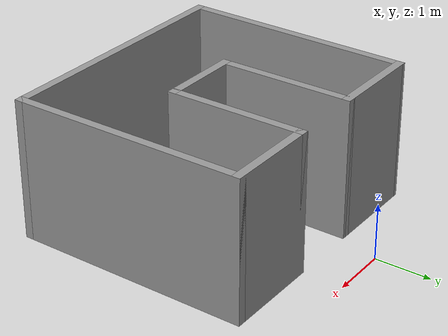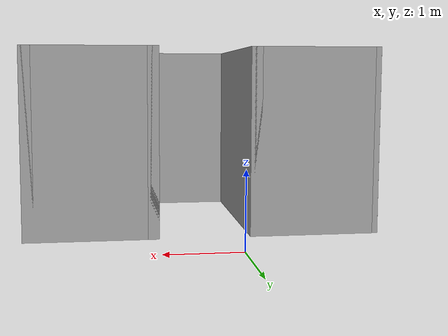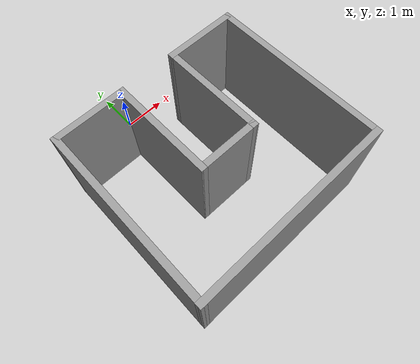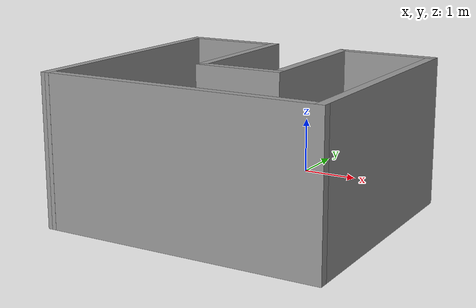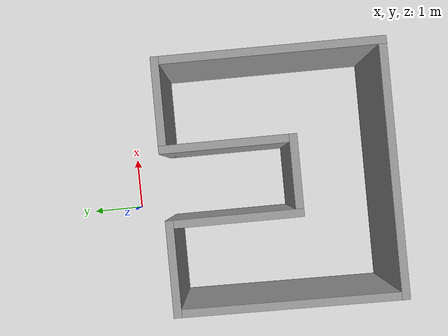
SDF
<?xml version='1.0'?>
<sdf version='1.6'>
  <model name='udx'>
    <pose frame=''>0.359546 -2.84 0 0 -0 0</pose>
    <link name='Wall_0'>
      <collision name='Wall_0_Collision'>
        <geometry>
          <box>
            <size>1.75 0.15 2.5</size>
          </box>
        </geometry>
        <pose frame=''>0 0 1.25 0 -0 0</pose>
      </collision>
      <visual name='Wall_0_Visual'>
        <pose frame=''>0 0 1.25 0 -0 0</pose>
        <geometry>
          <box>
            <size>1.75 0.15 2.5</size>
          </box>
        </geometry>
        <material>
          <script>
            <uri>file://media/materials/scripts/gazebo.material</uri>
            <name>Gazebo/Grey</name>
          </script>
          <ambient>1 1 1 1</ambient>
        </material>
        <meta>
          <layer>0</layer>
        </meta>
      </visual>
      <pose frame=''>-1.44955 2.05 0 0 -0 0</pose>
    </link>
    <link name='Wall_1'>
      <collision name='Wall_1_Collision'>
        <geometry>
          <box>
            <size>2.5 0.15 2.5</size>
          </box>
        </geometry>
        <pose frame=''>0 0 1.25 0 -0 0</pose>
      </collision>
      <visual name='Wall_1_Visual'>
        <pose frame=''>0 0 1.25 0 -0 0</pose>
        <geometry>
          <box>
            <size>2.5 0.15 2.5</size>
          </box>
        </geometry>
        <material>
          <script>
            <uri>file://media/materials/scripts/gazebo.material</uri>
            <name>Gazebo/Grey</name>
          </script>
          <ambient>1 1 1 1</ambient>
        </material>
        <meta>
          <layer>0</layer>
        </meta>
      </visual>
      <pose frame=''>-0.649546 0.875 0 0 0 -1.5708</pose>
    </link>
    <link name='Wall_2'>
      <collision name='Wall_2_Collision'>
        <geometry>
          <box>
            <size>1.5 0.15 2.5</size>
          </box>
        </geometry>
        <pose frame=''>0 0 1.25 0 -0 0</pose>
      </collision>
      <visual name='Wall_2_Visual'>
        <pose frame=''>0 0 1.25 0 -0 0</pose>
        <geometry>
          <box>
            <size>1.5 0.15 2.5</size>
          </box>
        </geometry>
        <material>
          <script>
            <uri>file://media/materials/scripts/gazebo.material</uri>
            <name>Gazebo/Grey</name>
          </script>
          <ambient>1 1 1 1</ambient>
        </material>
        <meta>
          <layer>0</layer>
        </meta>
      </visual>
      <pose frame=''>0.025454 -0.3 0 0 -0 0</pose>
    </link>
    <link name='Wall_3'>
      <collision name='Wall_3_Collision'>
        <geometry>
          <box>
            <size>2.5 0.15 2.5</size>
          </box>
        </geometry>
        <pose frame=''>0 0 1.25 0 -0 0</pose>
      </collision>
      <visual name='Wall_3_Visual'>
        <pose frame=''>0 0 1.25 0 -0 0</pose>
        <geometry>
          <box>
            <size>2.5 0.15 2.5</size>
          </box>
        </geometry>
        <material>
          <script>
            <uri>file://media/materials/scripts/gazebo.material</uri>
            <name>Gazebo/Grey</name>
          </script>
          <ambient>1 1 1 1</ambient>
        </material>
        <meta>
          <layer>0</layer>
        </meta>
      </visual>
      <pose frame=''>0.700454 0.875 0 0 -0 1.5708</pose>
    </link>
    <link name='Wall_4'>
      <collision name='Wall_4_Collision'>
        <geometry>
          <box>
            <size>1.75 0.15 2.5</size>
          </box>
        </geometry>
        <pose frame=''>0 0 1.25 0 -0 0</pose>
      </collision>
      <visual name='Wall_4_Visual'>
        <pose frame=''>0 0 1.25 0 -0 0</pose>
        <geometry>
          <box>
            <size>1.75 0.15 2.5</size>
          </box>
        </geometry>
        <material>
          <script>
            <uri>file://media/materials/scripts/gazebo.material</uri>
            <name>Gazebo/Grey</name>
          </script>
          <ambient>1 1 1 1</ambient>
        </material>
        <meta>
          <layer>0</layer>
        </meta>
      </visual>
      <pose frame=''>1.50045 2.05 0 0 -0 0</pose>
    </link>
    <link name='Wall_5'>
      <collision name='Wall_5_Collision'>
        <geometry>
          <box>
            <size>4.25 0.15 2.5</size>
          </box>
        </geometry>
        <pose frame=''>0 0 1.25 0 -0 0</pose>
      </collision>
      <visual name='Wall_5_Visual'>
        <pose frame=''>0 0 1.25 0 -0 0</pose>
        <geometry>
          <box>
            <size>4.25 0.15 2.5</size>
          </box>
        </geometry>
        <material>
          <script>
            <uri>file://media/materials/scripts/gazebo.material</uri>
            <name>Gazebo/Grey</name>
          </script>
          <ambient>1 1 1 1</ambient>
        </material>
        <meta>
          <layer>0</layer>
        </meta>
      </visual>
      <pose frame=''>2.30045 0 0 0 0 -1.5708</pose>
    </link>
    <link name='Wall_6'>
      <collision name='Wall_6_Collision'>
        <geometry>
          <box>
            <size>4.75 0.15 2.5</size>
          </box>
        </geometry>
        <pose frame=''>0 0 1.25 0 -0 0</pose>
      </collision>
      <visual name='Wall_6_Visual'>
        <pose frame=''>0 0 1.25 0 -0 0</pose>
        <geometry>
          <box>
            <size>4.75 0.15 2.5</size>
          </box>
        </geometry>
        <material>
          <script>
            <uri>file://media/materials/scripts/gazebo.material</uri>
            <name>Gazebo/Grey</name>
          </script>
          <ambient>1 1 1 1</ambient>
        </material>
        <meta>
          <layer>0</layer>
        </meta>
      </visual>
      <pose frame=''>0.000454 -2.05 0 0 -0 3.14159</pose>
    </link>
    <link name='Wall_7'>
      <collision name='Wall_7_Collision'>
        <geometry>
          <box>
            <size>4.2503 0.15 2.5</size>
          </box>
        </geometry>
        <pose frame=''>0 0 1.25 0 -0 0</pose>
      </collision>
      <visual name='Wall_7_Visual'>
        <pose frame=''>0 0 1.25 0 -0 0</pose>
        <geometry>
          <box>
            <size>4.2503 0.15 2.5</size>
          </box>
        </geometry>
        <material>
          <script>
            <uri>file://media/materials/scripts/gazebo.material</uri>
            <name>Gazebo/Grey</name>
          </script>
          <ambient>1 1 1 1</ambient>
        </material>
        <meta>
          <layer>0</layer>
        </meta>
      </visual>
      <pose frame=''>-2.27455 0 0 0 -0 1.5586</pose>
    </link>
    <static>1</static>
  </model>
</sdf>
